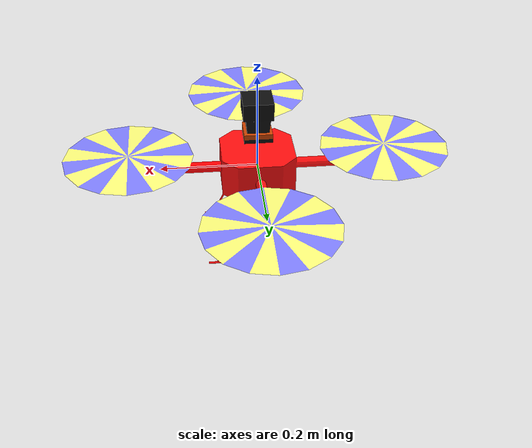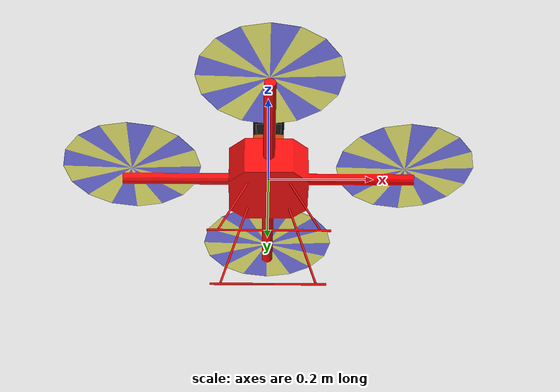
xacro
<?xml version="1.0"?>

<robot
  name="quadrotor"
  xmlns:xacro="http://ros.org/wiki/xacro"
>

    <xacro:property name="M_PI" value="3.1415926535897931" />

    <!-- Included URDF Files -->
    <xacro:include filename="$(find hector_quadrotor_description)/urdf/quadrotor_base.urdf.xacro" />

    <!-- Instantiate quadrotor_base_macro once (has no parameters atm) -->
    <xacro:quadrotor_base_macro />

    <!-- Hokuyo UTM-30LX mounted upside down below the quadrotor body -->
    <xacro:include filename="$(find hector_sensors_description)/urdf/hokuyo_utm30lx.urdf.xacro" />
    <xacro:hokuyo_utm30lx name="laser" parent="base_link" ros_topic="scan" update_rate="40" ray_count="1081" min_angle="-135" max_angle="135">
      <origin xyz="0.0 0.0 0.10" rpy="${M_PI} 0 0"/>
    </xacro:hokuyo_utm30lx>

    <!-- Forward facing camera -->

</robot>

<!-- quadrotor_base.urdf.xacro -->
<robot xmlns:xacro="http://www.ros.org/wiki/xacro">

  <xacro:property name="pi" value="3.1415926535897931" />

  <!-- Main quadrotor link -->
  <xacro:macro name="quadrotor_base_macro">
    <link name="base_link">
      <inertial>
        <mass value="1.477" />
        <origin xyz="0 0 0" />
        <inertia ixx="0.01152" ixy="0.0" ixz="0.0" iyy="0.01152" iyz="0.0" izz="0.0218" />
      </inertial>

      <visual>
        <origin xyz="0 0 0" rpy="0 0 0" />
        <geometry>
          <mesh filename="package://hector_quadrotor_description/meshes/quadrotor/quadrotor_base.dae"/>
        </geometry>
      </visual>

      <collision>
        <origin xyz="0 0 0" rpy="0 0 0" />
        <geometry>
          <mesh filename="package://hector_quadrotor_description/meshes/quadrotor/quadrotor_base.stl"/>
        </geometry>
      </collision>
    </link>

    <!-- Sonar height sensor -->

  </xacro:macro>
</robot>

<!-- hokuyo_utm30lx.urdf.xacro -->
<robot xmlns:xacro="http://ros.org/wiki/xacro">
    <xacro:property name="M_PI" value="3.1415926535897931" />

    <xacro:macro name="hokuyo_utm30lx_model" params="name parent *origin">
      <joint name="${name}_joint" type="fixed">
        <xacro:insert_block name="origin" />
        <parent link="${parent}"/>
        <child link="${name}_frame"/>
      </joint>

      <link name="${name}_frame">
        <inertial>
          <mass value="0.270" />
          <origin xyz="0 0 0" rpy="0 0 0" />
          <inertia ixx="2.632e-4" ixy="0" ixz="0" iyy="2.632e-4" iyz="0" izz="1.62e-4" />
        </inertial>
        <visual>
          <origin xyz="0 0 0" rpy="0 0 0" />
          <geometry>
          <mesh filename="package://hector_sensors_description/meshes/hokuyo_utm30lx/hokuyo_utm_30lx$(optenv TEST_SELF_FILTER).dae"/>
        </geometry>
        </visual>
        <collision>
          <origin xyz="0.00 0 0.0" rpy="0 ${0.5 * M_PI} 0" />
          <geometry>
	    <cylinder length="0.079" radius="0.0735"/>
        </geometry>
        </collision>
      </link>
    </xacro:macro>

    <xacro:macro name="hokuyo_utm30lx" params="name parent *origin ros_topic update_rate ray_count min_angle max_angle">
      <xacro:hokuyo_utm30lx_model name="${name}" parent="${parent}">
        <xacro:insert_block name="origin" />
      </xacro:hokuyo_utm30lx_model>

      <gazebo reference="${name}_frame">
        <sensor type="ray" name="${name}">
          <always_on>true</always_on>
          <update_rate>${update_rate}</update_rate>
          <pose>0 0 0 0 0 0</pose>
          <visualize>false</visualize>
          <ray>
            <scan>
              <horizontal>
                <samples>${ray_count}</samples>
                <resolution>1</resolution>
                <min_angle>${min_angle * M_PI/180}</min_angle>
                <max_angle>${max_angle * M_PI/180}</max_angle>
              </horizontal>
            </scan>
            <range>
              <min>0.2</min>
              <max>30.0</max>
              <resolution>0.01</resolution>
            </range>
            <noise>
              <type>gaussian</type>
              <mean>0.0</mean>
              <stddev>0.004</stddev>
            </noise>
          </ray>
          <plugin name="gazebo_ros_${name}_controller" filename="libgazebo_ros_laser.so">
            <gaussianNoise>0.005</gaussianNoise>
            <hokuyoMinIntensity>2000</hokuyoMinIntensity>
            <alwaysOn>true</alwaysOn>
	    <robotNamespace>$(arg robot_name)/sensor/</robotNamespace>
            <updateRate>${update_rate}</updateRate>
            <topicName>${ros_topic}</topicName>
            <frameName>${name}_frame</frameName>
          </plugin>
        </sensor>
      </gazebo>
    </xacro:macro>

    <xacro:macro name="hokuyo_utm30lx_gpu" params="name parent *origin ros_topic update_rate ray_count min_angle max_angle">
      <xacro:hokuyo_utm30lx_model name="${name}" parent="${parent}">
        <xacro:insert_block name="origin" />
      </xacro:hokuyo_utm30lx_model>

      <gazebo reference="${name}_frame">
        <sensor type="gpu_ray" name="${name}">
          <update_rate>${update_rate}</update_rate>
          <pose>0 0 0 0 0 0</pose>
          <visualize>false</visualize>
          <ray>
            <scan>
              <horizontal>
                <samples>${ray_count}</samples>
                <resolution>1</resolution>
                <min_angle>${min_angle * M_PI/180}</min_angle>
                <max_angle>${max_angle * M_PI/180}</max_angle>
              </horizontal>
            </scan>
            <range>
              <min>0.2</min>
              <max>30.0</max>
              <resolution>0.01</resolution>
            </range>
            <noise>
              <type>gaussian</type>
              <mean>0.0</mean>
              <stddev>0.004</stddev>
            </noise>
          </ray>
          <plugin name="gazebo_ros_${name}_controller" filename="libgazebo_ros_gpu_laser.so">
            <topicName>${ros_topic}</topicName>
            <frameName>${name}_frame</frameName>
          </plugin>
        </sensor>
      </gazebo>
    </xacro:macro>
</robot>
